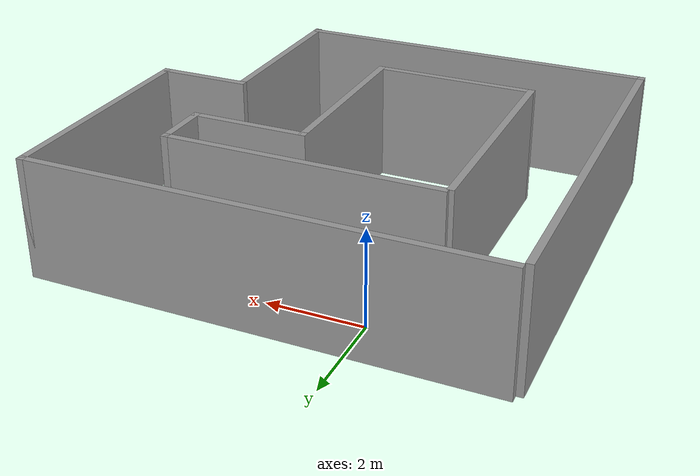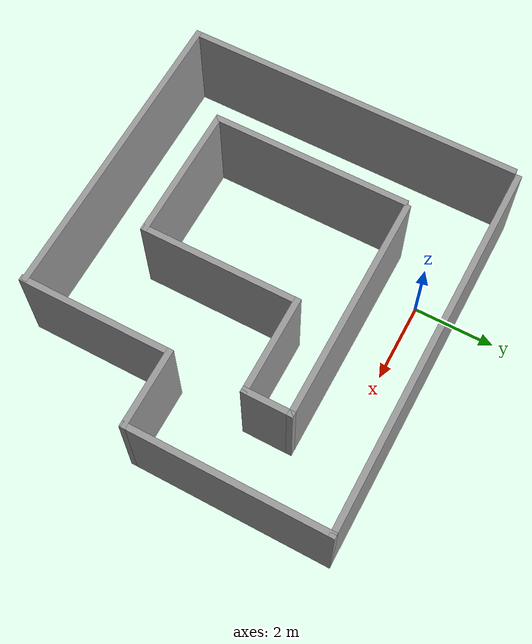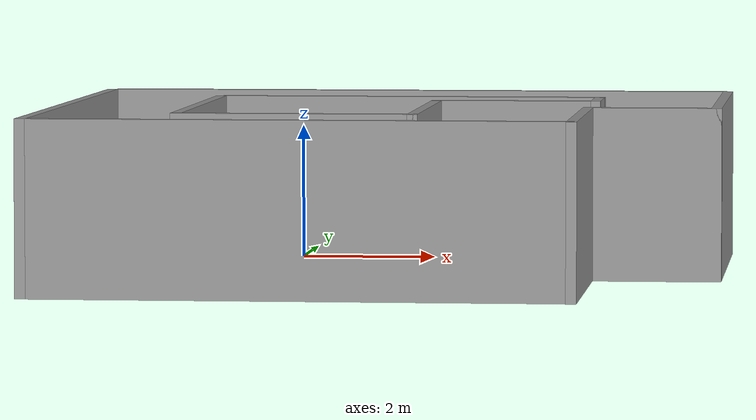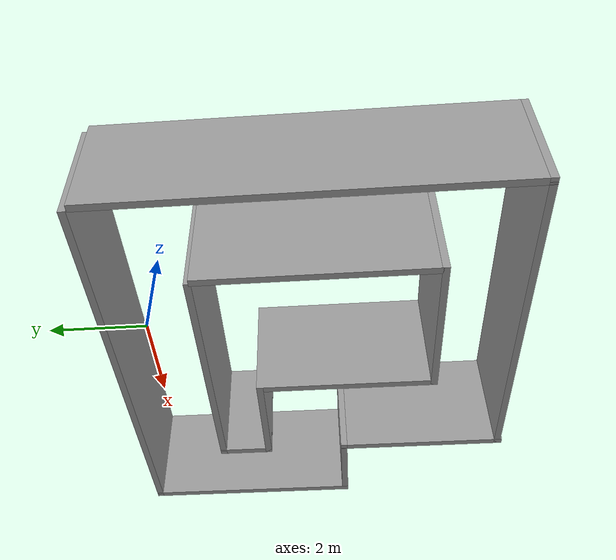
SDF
<?xml version='1.0'?>
<sdf version='1.6'>
  <model name='circleOW'>
    <pose frame=''>1.67979 -3.36119 0 0 -0 0</pose>
    <link name='Wall_11'>
      <collision name='Wall_11_Collision'>
        <geometry>
          <box>
            <size>7.75 0.15 2.5</size>
          </box>
        </geometry>
        <pose frame=''>0 0 1.25 0 -0 0</pose>
      </collision>
      <visual name='Wall_11_Visual'>
        <pose frame=''>0 0 1.25 0 -0 0</pose>
        <geometry>
          <box>
            <size>7.75 0.15 2.5</size>
          </box>
        </geometry>
        <material>
          <script>
            <uri>file://media/materials/scripts/gazebo.material</uri>
            <name>Gazebo/Grey</name>
          </script>
          <ambient>1 1 1 1</ambient>
        </material>
      </visual>
      <pose frame=''>-0.942589 -4.24259 0 0 -0 3.14159</pose>
    </link>
    <link name='Wall_16'>
      <collision name='Wall_16_Collision'>
        <geometry>
          <box>
            <size>3.5 0.15 2.5</size>
          </box>
        </geometry>
        <pose frame=''>0 0 1.25 0 -0 0</pose>
      </collision>
      <visual name='Wall_16_Visual'>
        <pose frame=''>0 0 1.25 0 -0 0</pose>
        <geometry>
          <box>
            <size>3.5 0.15 2.5</size>
          </box>
        </geometry>
        <material>
          <script>
            <uri>file://media/materials/scripts/gazebo.material</uri>
            <name>Gazebo/Grey</name>
          </script>
          <ambient>1 1 1 1</ambient>
        </material>
      </visual>
      <pose frame=''>-1.13005 -2.58437 0 0 -0 0</pose>
    </link>
    <link name='Wall_17'>
      <collision name='Wall_17_Collision'>
        <geometry>
          <box>
            <size>4 0.15 2.5</size>
          </box>
        </geometry>
        <pose frame=''>0 0 1.25 0 -0 0</pose>
      </collision>
      <visual name='Wall_17_Visual'>
        <pose frame=''>0 0 1.25 0 -0 0</pose>
        <geometry>
          <box>
            <size>4 0.15 2.5</size>
          </box>
        </geometry>
        <material>
          <script>
            <uri>file://media/materials/scripts/gazebo.material</uri>
            <name>Gazebo/Grey</name>
          </script>
          <ambient>1 1 1 1</ambient>
        </material>
      </visual>
      <pose frame=''>0.54495 -0.659372 0 0 -0 1.5708</pose>
    </link>
    <link name='Wall_18'>
      <collision name='Wall_18_Collision'>
        <geometry>
          <box>
            <size>2.5 0.15 2.5</size>
          </box>
        </geometry>
        <pose frame=''>0 0 1.25 0 -0 0</pose>
      </collision>
      <visual name='Wall_18_Visual'>
        <pose frame=''>0 0 1.25 0 -0 0</pose>
        <geometry>
          <box>
            <size>2.5 0.15 2.5</size>
          </box>
        </geometry>
        <material>
          <script>
            <uri>file://media/materials/scripts/gazebo.material</uri>
            <name>Gazebo/Grey</name>
          </script>
          <ambient>1 1 1 1</ambient>
        </material>
      </visual>
      <pose frame=''>1.71995 1.26563 0 0 -0 0</pose>
    </link>
    <link name='Wall_19'>
      <collision name='Wall_19_Collision'>
        <geometry>
          <box>
            <size>1.25 0.15 2.5</size>
          </box>
        </geometry>
        <pose frame=''>0 0 1.25 0 -0 0</pose>
      </collision>
      <visual name='Wall_19_Visual'>
        <pose frame=''>0 0 1.25 0 -0 0</pose>
        <geometry>
          <box>
            <size>1.25 0.15 2.5</size>
          </box>
        </geometry>
        <material>
          <script>
            <uri>file://media/materials/scripts/gazebo.material</uri>
            <name>Gazebo/Grey</name>
          </script>
          <ambient>1 1 1 1</ambient>
        </material>
      </visual>
      <pose frame=''>2.89495 1.81563 0 0 -0 1.5708</pose>
    </link>
    <link name='Wall_20'>
      <collision name='Wall_20_Collision'>
        <geometry>
          <box>
            <size>5.75 0.15 2.5</size>
          </box>
        </geometry>
        <pose frame=''>0 0 1.25 0 -0 0</pose>
      </collision>
      <visual name='Wall_20_Visual'>
        <pose frame=''>0 0 1.25 0 -0 0</pose>
        <geometry>
          <box>
            <size>5.75 0.15 2.5</size>
          </box>
        </geometry>
        <material>
          <script>
            <uri>file://media/materials/scripts/gazebo.material</uri>
            <name>Gazebo/Grey</name>
          </script>
          <ambient>1 1 1 1</ambient>
        </material>
      </visual>
      <pose frame=''>0.09495 2.36563 0 0 -0 3.14159</pose>
    </link>
    <link name='Wall_22'>
      <collision name='Wall_22_Collision'>
        <geometry>
          <box>
            <size>5 0.15 2.5</size>
          </box>
        </geometry>
        <pose frame=''>0 0 1.25 0 -0 0</pose>
      </collision>
      <visual name='Wall_22_Visual'>
        <pose frame=''>0 0 1.25 0 -0 0</pose>
        <geometry>
          <box>
            <size>5 0.15 2.5</size>
          </box>
        </geometry>
        <material>
          <script>
            <uri>file://media/materials/scripts/gazebo.material</uri>
            <name>Gazebo/Grey</name>
          </script>
          <ambient>1 1 1 1</ambient>
        </material>
      </visual>
      <pose frame=''>-2.80505 -0.159372 0 0 -0 1.5708</pose>
    </link>
    <link name='Wall_24'>
      <collision name='Wall_24_Collision'>
        <geometry>
          <box>
            <size>8.5 0.15 2.5</size>
          </box>
        </geometry>
        <pose frame=''>0 0 1.25 0 -0 0</pose>
      </collision>
      <visual name='Wall_24_Visual'>
        <pose frame=''>0 0 1.25 0 -0 0</pose>
        <geometry>
          <box>
            <size>8.5 0.15 2.5</size>
          </box>
        </geometry>
        <material>
          <script>
            <uri>file://media/materials/scripts/gazebo.material</uri>
            <name>Gazebo/Grey</name>
          </script>
          <ambient>1 1 1 1</ambient>
        </material>
      </visual>
      <pose frame=''>-4.74259 -0.06759 0 0 -0 1.5708</pose>
    </link>
    <link name='Wall_6'>
      <collision name='Wall_6_Collision'>
        <geometry>
          <box>
            <size>9.5 0.15 2.5</size>
          </box>
        </geometry>
        <pose frame=''>0 0 1.25 0 -0 0</pose>
      </collision>
      <visual name='Wall_6_Visual'>
        <pose frame=''>0 0 1.25 0 -0 0</pose>
        <geometry>
          <box>
            <size>9.5 0.15 2.5</size>
          </box>
        </geometry>
        <material>
          <script>
            <uri>file://media/materials/scripts/gazebo.material</uri>
            <name>Gazebo/Grey</name>
          </script>
          <ambient>1 1 1 1</ambient>
        </material>
      </visual>
      <pose frame=''>0.06759 4.27777 0 0 -0 0</pose>
    </link>
    <link name='Wall_7'>
      <collision name='Wall_7_Collision'>
        <geometry>
          <box>
            <size>5 0.15 2.5</size>
          </box>
        </geometry>
        <pose frame=''>0 0 1.25 0 -0 0</pose>
      </collision>
      <visual name='Wall_7_Visual'>
        <pose frame=''>0 0 1.25 0 -0 0</pose>
        <geometry>
          <box>
            <size>5 0.15 2.5</size>
          </box>
        </geometry>
        <material>
          <script>
            <uri>file://media/materials/scripts/gazebo.material</uri>
            <name>Gazebo/Grey</name>
          </script>
          <ambient>1 1 1 1</ambient>
        </material>
      </visual>
      <pose frame=''>4.74259 1.85277 0 0 0 -1.5708</pose>
    </link>
    <link name='Wall_8'>
      <collision name='Wall_8_Collision'>
        <geometry>
          <box>
            <size>2 0.15 2.5</size>
          </box>
        </geometry>
        <pose frame=''>0 0 1.25 0 -0 0</pose>
      </collision>
      <visual name='Wall_8_Visual'>
        <pose frame=''>0 0 1.25 0 -0 0</pose>
        <geometry>
          <box>
            <size>2 0.15 2.5</size>
          </box>
        </geometry>
        <material>
          <script>
            <uri>file://media/materials/scripts/gazebo.material</uri>
            <name>Gazebo/Grey</name>
          </script>
          <ambient>1 1 1 1</ambient>
        </material>
      </visual>
      <pose frame=''>3.81759 -0.572232 0 0 -0 3.14159</pose>
    </link>
    <link name='Wall_9'>
      <collision name='Wall_9_Collision'>
        <geometry>
          <box>
            <size>3.85554 0.15 2.5</size>
          </box>
        </geometry>
        <pose frame=''>0 0 1.25 0 -0 0</pose>
      </collision>
      <visual name='Wall_9_Visual'>
        <pose frame=''>0 0 1.25 0 -0 0</pose>
        <geometry>
          <box>
            <size>3.85554 0.15 2.5</size>
          </box>
        </geometry>
        <material>
          <script>
            <uri>file://media/materials/scripts/gazebo.material</uri>
            <name>Gazebo/Grey</name>
          </script>
          <ambient>1 1 1 1</ambient>
        </material>
      </visual>
      <pose frame=''>2.89259 -2.425 0 0 0 -1.5708</pose>
    </link>
    <static>1</static>
  </model>
</sdf>
